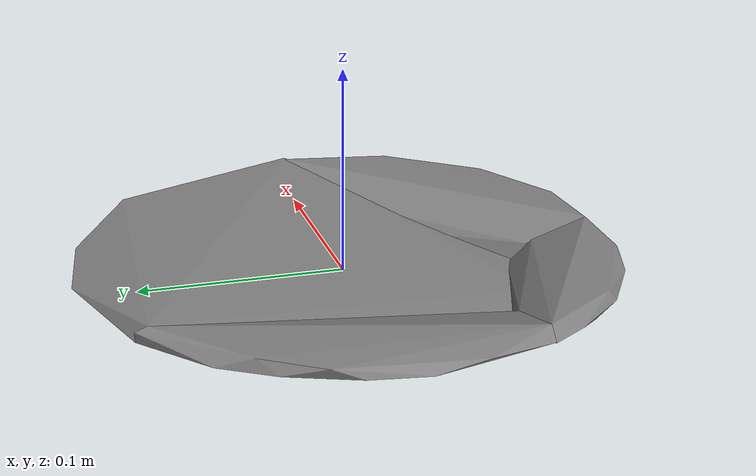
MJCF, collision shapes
<mujoco model="plate">
  <compiler angle="radian" />

  <asset>
    <mesh name="plate_visual_mesh" file="plate/textured.obj" />
    <mesh name="plate_collision_mesh_0" file="plate/textured_coacd_0.stl" />
    <mesh name="plate_collision_mesh_1" file="plate/textured_coacd_1.stl" />
    <mesh name="plate_collision_mesh_2" file="plate/textured_coacd_2.stl" />
    <mesh name="plate_collision_mesh_3" file="plate/textured_coacd_3.stl" />
    <texture name="plate_texture" type="2d" file="plate/texture_map.png" />
    <material name="plate_material" texture="plate_texture" />
  </asset>

  <worldbody>
    <body name="plate" pos="0 0 0" euler="0 0 0">
      <freejoint name="plate_joint" />
      <geom name="plate_visual_geom" type="mesh" mesh="plate_visual_mesh" material="plate_material" pos="0.010005972478719946 -0.0012469395633811198 -0.008849692580074854" euler="0 0 0" contype="0" conaffinity="0" group="0" />
      <geom name="plate_collision_geom_0" type="mesh" mesh="plate_collision_mesh_0" pos="0.010005972478719946 -0.0012469395633811198 -0.008849692580074854" euler="0 0 0" contype="1" conaffinity="1" group="3" />
      <geom name="plate_collision_geom_1" type="mesh" mesh="plate_collision_mesh_1" pos="0.010005972478719946 -0.0012469395633811198 -0.008849692580074854" euler="0 0 0" contype="1" conaffinity="1" group="3" />
      <geom name="plate_collision_geom_2" type="mesh" mesh="plate_collision_mesh_2" pos="0.010005972478719946 -0.0012469395633811198 -0.008849692580074854" euler="0 0 0" contype="1" conaffinity="1" group="3" />
      <geom name="plate_collision_geom_3" type="mesh" mesh="plate_collision_mesh_3" pos="0.010005972478719946 -0.0012469395633811198 -0.008849692580074854" euler="0 0 0" contype="1" conaffinity="1" group="3" />
      <inertial pos="0 0 0" euler="0 0 0" mass="0.279" diaginertia="0.001 0.001 0.001" />
    </body>
  </worldbody>
</mujoco>
